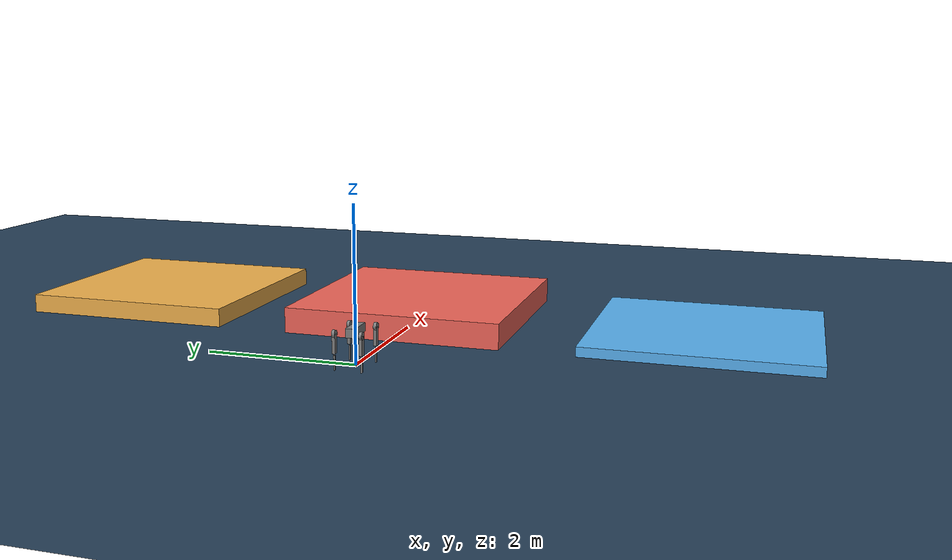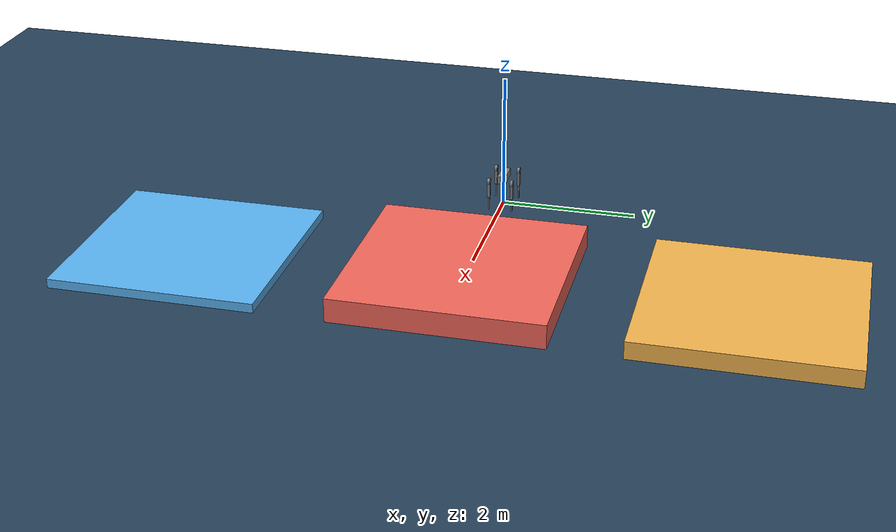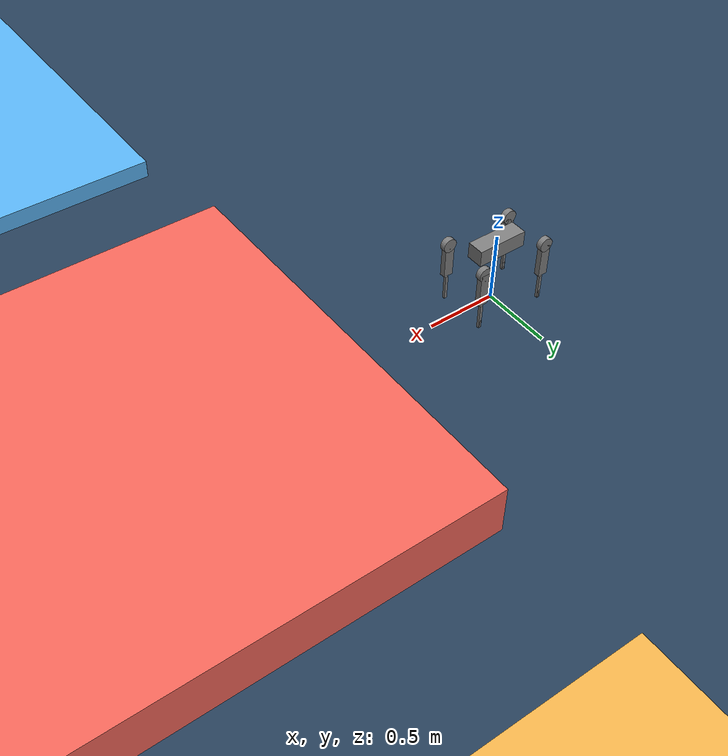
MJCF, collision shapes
<mujoco model="arcdog scene">
  <include file="arcdog_adjustable_leg.xml"/>

  <statistic center="0 0 0.1" extent="0.8"/>

  <visual>
    <headlight diffuse="0.6 0.6 0.6" ambient="0.3 0.3 0.3" specular="0 0 0"/>
    <rgba haze="0.15 0.25 0.35 1"/>
    <global azimuth="-130" elevation="-20"/>
  </visual>

  <asset>
    <texture type="skybox" builtin="gradient" rgb1="0.3 0.5 0.7" rgb2="0 0 0" width="512" height="3072"/>
    <texture type="2d" name="groundplane" builtin="checker" mark="edge" rgb1="0.2 0.3 0.4" rgb2="0.1 0.2 0.3"
      markrgb="0.8 0.8 0.8" width="300" height="300"/>
    <material name="groundplane" texture="groundplane" texuniform="true" texrepeat="5 5" reflectance="0.2"/>
  </asset>

  <worldbody>
    <light pos="0 0 1.5" dir="0 0 -1" directional="true"/>
    <geom name="floor" size="0 0 0.05" type="plane" material="groundplane"/>

    <geom name="highstep_box_L3_h0133"  pos="2.70 -4.00 0.0665" type="box" size="1.50 1.50 0.0665" rgba="0.35 0.70 0.95 1" friction="2.0"/>
    <geom name="highstep_box_L7_h0257"  pos="2.70  4.00 0.1285" type="box" size="1.50 1.50 0.1285" rgba="0.95 0.70 0.30 1" friction="2.0"/>
    <geom name="highstep_box_L10_h0350" pos="2.70  0.00 0.1750" type="box" size="1.50 1.50 0.1750" rgba="0.95 0.40 0.35 1" friction="2.0"/>

  </worldbody>
</mujoco>

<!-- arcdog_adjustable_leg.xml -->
<mujoco model="arcdog_adjustable_leg">
  <compiler angle="radian" meshdir="../meshes" autolimits="true" />

  <option cone="elliptic" impratio="100" />

  <default>
    <default class="arcdog_adjustable_leg">
      <geom friction="0.4" margin="0.001" condim="1"/>
      <joint axis="0 1 0" damping="0.1" armature="0.01" frictionloss="0.2"/>
      <motor ctrlrange="-23.7 23.7"/>
      <default class="abduction">
        <joint axis="1 0 0" range="-1.0472 1.0472"/> //TODO JUST COPY FROM GO2
      </default>
      <default class="hip">
        <default class="front_hip">
          <joint range="-1.5708 3.4907"/> //TODO JUST COPY FROM GO2
        </default>
        <default class="back_hip">
          <joint range="-0.5236 4.5379"/> //TODO JUST COPY FROM GO2
        </default>
      </default>
      <default class="knee">
        <joint range="-2.7227 -0.83776"/> //TODO JUST COPY FROM GO2
        <motor ctrlrange="-45.43 45.43"/>
      </default>
      <default class="prismatic">
        <joint type="slide" axis="0 0 1" range="-0.05 0.10" damping="10.0" armature="0.1"/>
        <motor ctrlrange="-200 200"/>
      </default>
      <default class="visual">
        <geom type="mesh" contype="0" conaffinity="0" group="2"/>
      </default>
      <default class="collision">
        <geom group="3"/>
        <default class="foot">
          <!-- 修改点：将摩擦系数从 0.4 提升至 2.0，彻底解决打滑问题 -->
          <geom size="0.0235" pos="-0.001 0 -0.1651" priority="1" condim="6"
            friction="1.0 0.04 0.01"/>
        </default>
      </default>
    </default>
  </default>

  <asset>
    <material name="metal" rgba=".9 .95 .95 1" />
    <material name="black" rgba="0 0 0 1" />
    <material name="white" rgba="1 1 1 1" />
    <material name="gray" rgba="0.671705 0.692426 0.774270 1" />

    <mesh file="trunk.stl" scale="1 1 1"/>
    <mesh file="hip.stl"/>
    <mesh file="thigh.stl"/>
    <mesh file="thigh_mirror.stl"/>
    <mesh file="calf.stl"/>
    <mesh file="calf_mirror.stl"/>
    <mesh file="adjustable_leg.stl"/>
    <mesh file="foot.obj" />
  </asset>

  <worldbody>
    <body name="base_link" pos="0 0 0.445" childclass="arcdog_adjustable_leg">
      <inertial pos="-0.002250 0.000116 -0.001452" quat="1 0 0 0"
        mass="5.742"
        diaginertia="0.037914363 0.119267297 0.142804844" />
      <freejoint />
      <geom mesh="trunk" material="gray" class="visual" />
      <geom size="0.1805 0.0605 0.057" type="box" class="collision"/> //size of xml box model is half of urdf model
      <site name="imu" pos="-0.02557 0 0.04232" /> //TODO JUST COPY FROM GO2

      <body name="FL_hip" pos="0.2515 0.0605 0">
        <inertial pos="-0.0082 0.000984 0.000162" quat="0.494941 0.495107 0.504986 0.504868" mass="1.108" diaginertia="0.000972670 0.001754403 0.001311138" />
        <joint name="FL_hip_joint" class="abduction" />
        <geom mesh="hip" material="metal" class="visual" />
        <geom size="0.0495 0.02" pos="0 0.11475 0" quat="0.707107 0.707107 0 0" type="cylinder" class="collision" />
        <body name="FL_thigh" pos="0 0.11475 0">
          <inertial pos="-0.004484 -0.033084 -0.030728" quat="1 0 0 0" mass="1.636" diaginertia="0.009596889 0.009201469 0.002385568" />
          <joint name="FL_thigh_joint" class="front_hip" />
          <geom mesh="thigh" material="metal" class="visual" />
          <geom size="0.12225 0.020 0.033985" pos="0 0 -0.12225" quat="0.707107 0 0.707107 0" type="box" class="collision" />
          <body name="FL_calf" pos="0 0 -0.2445">
            <inertial pos="-0.000681132 0 -0.141397" quat="0.707094 -0.00418023 -0.00418023 0.707094" mass="0.700" diaginertia="9.30304e-4 9.25714e-4 3.62187e-5" />
            <joint name="FL_calf_joint" class="knee" />
            <geom mesh="calf_mirror" material="gray" class="visual" />
            <geom size="0.0965 0.01 0.01" pos="0 0 -0.11852" quat="0.707107 0 0.707107 0" type="box" class="collision" />
            <body name="FL_box" pos="0 0 -0.133">
              <inertial pos="-0 0 -0.105" quat="1 0 0 0" mass="0.200" diaginertia="2.84096807e-4 2.62510200e-4 5.16070090e-5" />
              <joint name="FL_box_joint" class="prismatic" />
              <geom mesh="adjustable_leg" material="gray" class="visual" />
              <geom size="0.0075 0.01 0.08455" pos="0 0 -0.0965" quat="0 0 0 1" type="box" class="collision" />
              <geom pos="0 0 -0.1651" mesh="foot" class="visual" material="black" />
              <geom name="FL_foot" class="foot" />
              <body name="FL_foot"/>
            </body>
          </body>
        </body>
      </body>

       <body name="FR_hip" pos="0.2515 -0.0605 0">
        <inertial pos="-0.0082 0.000984 0.000162" quat="0.494941 0.495107 0.504986 0.504868" mass="1.108" diaginertia="0.000972670 0.001754403 0.001311138" />
        <joint name="FR_hip_joint" class="abduction" />
        <geom mesh="hip" material="metal" class="visual" quat="4.63268e-05 1 0 0" />
        <geom size="0.0495 0.02" pos="0 -0.11475 0" quat="0.707107 0.707107 0 0" type="cylinder" class="collision" />
        <body name="FR_thigh" pos="0 -0.11475 0">
          <inertial pos="-0.004484 0.033084 -0.030728" quat="1 0 0 0" mass="1.636" diaginertia="0.009596889 0.009201469 0.002385568" />
          <joint name="FR_thigh_joint" class="front_hip" />
          <geom mesh="thigh_mirror" material="metal" class="visual" />
          <geom size="0.12225 0.020 0.033985" pos="0 0 -0.12225" quat="0.707107 0 0.707107 0" type="box" class="collision" />
          <body name="FR_calf" pos="0 0 -0.2445">
            <inertial pos="-0.000681132 0 -0.141397" quat="0.707094 -0.00418023 -0.00418023 0.707094" mass="0.700" diaginertia="9.30304e-4 9.25714e-4 3.62187e-5" />
            <joint name="FR_calf_joint" class="knee" />
            <geom mesh="calf" material="gray" class="visual" />
            <geom size="0.0965 0.01 0.01" pos="0 0 -0.11852" quat="0.707107 0 0.707107 0" type="box" class="collision" />
            <body name="FR_box" pos="0 0 -0.133">
              <inertial pos="-0 0 -0.105" quat="1 0 0 0" mass="0.200" diaginertia="2.84096807e-4 2.62510200e-4 5.16070090e-5" />
              <joint name="FR_box_joint" class="prismatic" />
              <geom mesh="adjustable_leg" material="gray" class="visual" />
              <geom size="0.0075 0.01 0.08455" pos="0 0 -0.0965" quat="0 0 0 1" type="box" class="collision" />
              <geom pos="0 0 -0.1651" mesh="foot" class="visual" material="black" />
              <geom name="FR_foot" class="foot" />
              <body name="FR_foot"/>
            </body>
          </body>
        </body>
      </body>

      <body name="RL_hip" pos="-0.2515 0.0605 0">
        <inertial pos="-0.0082 0.000984 0.000162" quat="0.494941 0.495107 0.504986 0.504868" mass="1.108" diaginertia="0.000972670 0.001754403 0.001311138" />
        <joint name="RL_hip_joint" class="abduction" />
        <geom mesh="hip" material="metal" class="visual" quat="4.63268e-05 0 1 0" />
        <geom size="0.0495 0.02" pos="0 0.11475 0" quat="0.707107 0.707107 0 0" type="cylinder" class="collision" />
        <body name="RL_thigh" pos="0 0.11475 0">
          <inertial pos="-0.004484 -0.033084 -0.030728" quat="1 0 0 0" mass="1.636" diaginertia="0.009596889 0.009201469 0.002385568" />
          <joint name="RL_thigh_joint" class="back_hip" />
          <geom mesh="thigh" material="metal" class="visual" />
          <geom size="0.12225 0.020 0.033985" pos="0 0 -0.12225" quat="0.707107 0 0.707107 0" type="box" class="collision" />
          <body name="RL_calf" pos="0 0 -0.2445">
            <inertial pos="-0.000681132 0 -0.141397" quat="0.707094 -0.00418023 -0.00418023 0.707094" mass="0.700" diaginertia="9.30304e-4 9.25714e-4 3.62187e-5" />
            <joint name="RL_calf_joint" class="knee" />
            <geom mesh="calf_mirror" material="gray" class="visual" />
            <geom size="0.0965 0.01 0.01" pos="0 0 -0.11852" quat="0.707107 0 0.707107 0" type="box" class="collision" />
            <body name="RL_box" pos="0 0 -0.133">
              <inertial pos="-0 0 -0.105" quat="1 0 0 0" mass="0.200" diaginertia="2.84096807e-4 2.62510200e-4 5.16070090e-5" />
             <joint name="RL_box_joint" class="prismatic" />
              <geom mesh="adjustable_leg" material="gray" class="visual" />
              <geom size="0.0075 0.01 0.08455" pos="0 0 -0.0965" quat="0 0 0 1" type="box" class="collision" />
              <geom pos="0 0 -0.1651" mesh="foot" class="visual" material="black" />
              <geom name="RL_foot" class="foot" />
              <body name="RL_foot" />
            </body>
          </body>
        </body>
      </body>

      <body name="RR_hip" pos="-0.2515 -0.0605 0">
        <inertial pos="-0.0082 0.000984 0.000162" quat="0.494941 0.495107 0.504986 0.504868" mass="1.108" diaginertia="0.000972670 0.001754403 0.001311138" />
        <joint name="RR_hip_joint" class="abduction" />
        <geom mesh="hip" material="metal" class="visual"
          quat="2.14617e-09 4.63268e-05 4.63268e-05 -1" />
        <geom size="0.0495 0.02" pos="0 -0.11475 0" quat="0.707107 0.707107 0 0" type="cylinder" class="collision" />
        <body name="RR_thigh" pos="0 -0.11475 0">
          <inertial pos="-0.004484 0.033084 -0.030728" quat="1 0 0 0" mass="1.636" diaginertia="0.009596889 0.009201469 0.002385568" />
          <joint name="RR_thigh_joint" class="back_hip" />
          <geom mesh="thigh_mirror" material="metal" class="visual" />
          <geom size="0.12225 0.020 0.033985" pos="0 0 -0.12225" quat="0.707107 0 0.707107 0" type="box" class="collision" />
          <body name="RR_calf" pos="0 0 -0.2445">
           <inertial pos="-0.000681132 0 -0.141397" quat="0.707094 -0.00418023 -0.00418023 0.707094" mass="0.700" diaginertia="9.30304e-4 9.25714e-4 3.62187e-5" />
            <joint name="RR_calf_joint" class="knee" />
            <geom mesh="calf" material="gray" class="visual" />
            <geom size="0.0965 0.01 0.01" pos="0 0 -0.11852" quat="0.707107 0 0.707107 0" type="box" class="collision" />
            <body name="RR_box" pos="0 0 -0.133">
              <inertial pos="-0 0 -0.105" quat="1 0 0 0" mass="0.200" diaginertia="2.84096807e-4 2.62510200e-4 5.16070090e-5" />
              <joint name="RR_box_joint" class="prismatic" />
              <geom mesh="adjustable_leg" material="gray" class="visual" />
              <geom size="0.0075 0.01 0.08455" pos="0 0 -0.0965" quat="0 0 0 1" type="box" class="collision" />
              <geom pos="0 0 -0.1651" mesh="foot" class="visual" material="black" />
              <geom name="RR_foot" class="foot" />
              <body name="RR_foot"/>
            </body>
          </body>
        </body>
      </body>
    </body>
  </worldbody>

  <actuator>
    <motor class="abduction" name="FR_hip_joint" joint="FR_hip_joint" />
    <motor class="hip" name="FR_thigh_joint" joint="FR_thigh_joint" />
    <motor class="knee" name="FR_calf_joint" joint="FR_calf_joint" />
    <motor class="prismatic" name="FR_box_joint" joint="FR_box_joint" />
    <motor class="abduction" name="FL_hip_joint" joint="FL_hip_joint" />
    <motor class="hip" name="FL_thigh_joint" joint="FL_thigh_joint" />
    <motor class="knee" name="FL_calf_joint" joint="FL_calf_joint" />
    <motor class="prismatic" name="FL_box_joint" joint="FL_box_joint" />
    <motor class="abduction" name="RR_hip_joint" joint="RR_hip_joint" />
    <motor class="hip" name="RR_thigh_joint" joint="RR_thigh_joint" />
    <motor class="knee" name="RR_calf_joint" joint="RR_calf_joint" />
    <motor class="prismatic" name="RR_box_joint" joint="RR_box_joint" />
    <motor class="abduction" name="RL_hip_joint" joint="RL_hip_joint" />
    <motor class="hip" name="RL_thigh_joint" joint="RL_thigh_joint" />
    <motor class="knee" name="RL_calf_joint" joint="RL_calf_joint" />
    <motor class="prismatic" name="RL_box_joint" joint="RL_box_joint" />
  </actuator>

  <sensor>
    <jointpos name="FR_hip_pos" joint="FR_hip_joint" />
    <jointpos name="FR_thigh_pos" joint="FR_thigh_joint" />
    <jointpos name="FR_calf_pos" joint="FR_calf_joint" />
    <jointpos name="FR_box_pos" joint="FR_box_joint" />
    <jointpos name="FL_hip_pos" joint="FL_hip_joint" />
    <jointpos name="FL_thigh_pos" joint="FL_thigh_joint" />
    <jointpos name="FL_calf_pos" joint="FL_calf_joint" />
    <jointpos name="FL_box_pos" joint="FL_box_joint" />
    <jointpos name="RR_hip_pos" joint="RR_hip_joint" />
    <jointpos name="RR_thigh_pos" joint="RR_thigh_joint" />
    <jointpos name="RR_calf_pos" joint="RR_calf_joint" />
    <jointpos name="RR_box_pos" joint="RR_box_joint" />
    <jointpos name="RL_hip_pos" joint="RL_hip_joint" />
    <jointpos name="RL_thigh_pos" joint="RL_thigh_joint" />
    <jointpos name="RL_calf_pos" joint="RL_calf_joint" />
    <jointpos name="RL_box_pos" joint="RL_box_joint" />

    <jointvel name="FR_hip_vel" joint="FR_hip_joint" />
    <jointvel name="FR_thigh_vel" joint="FR_thigh_joint" />
    <jointvel name="FR_calf_vel" joint="FR_calf_joint" />
    <jointvel name="FR_box_vel" joint="FR_box_joint" />
    <jointvel name="FL_hip_vel" joint="FL_hip_joint" />
    <jointvel name="FL_thigh_vel" joint="FL_thigh_joint" />
    <jointvel name="FL_calf_vel" joint="FL_calf_joint" />
    <jointvel name="FL_box_vel" joint="FL_box_joint" />
    <jointvel name="RR_hip_vel" joint="RR_hip_joint" />
    <jointvel name="RR_thigh_vel" joint="RR_thigh_joint" />
    <jointvel name="RR_calf_vel" joint="RR_calf_joint" />
    <jointvel name="RR_box_vel" joint="RR_box_joint" />
    <jointvel name="RL_hip_vel" joint="RL_hip_joint" />
    <jointvel name="RL_thigh_vel" joint="RL_thigh_joint" />
    <jointvel name="RL_calf_vel" joint="RL_calf_joint" />
    <jointvel name="RL_box_vel" joint="RL_box_joint" />

    <jointactuatorfrc name="FR_hip_torque" joint="FR_hip_joint" noise="0.01" />
    <jointactuatorfrc name="FR_thigh_torque" joint="FR_thigh_joint" noise="0.01" />
    <jointactuatorfrc name="FR_calf_torque" joint="FR_calf_joint" noise="0.01" />
    <jointactuatorfrc name="FR_box_torque" joint="FR_box_joint" noise="0.01" />
    <jointactuatorfrc name="FL_hip_torque" joint="FL_hip_joint" noise="0.01" />
    <jointactuatorfrc name="FL_thigh_torque" joint="FL_thigh_joint" noise="0.01" />
    <jointactuatorfrc name="FL_calf_torque" joint="FL_calf_joint" noise="0.01" />
    <jointactuatorfrc name="FL_box_torque" joint="FL_box_joint" noise="0.01" />
    <jointactuatorfrc name="RR_hip_torque" joint="RR_hip_joint" noise="0.01" />
    <jointactuatorfrc name="RR_thigh_torque" joint="RR_thigh_joint" noise="0.01" />
    <jointactuatorfrc name="RR_calf_torque" joint="RR_calf_joint" noise="0.01" />
    <jointactuatorfrc name="RR_box_torque" joint="RR_box_joint" noise="0.01" />
    <jointactuatorfrc name="RL_hip_torque" joint="RL_hip_joint" noise="0.01" />
    <jointactuatorfrc name="RL_thigh_torque" joint="RL_thigh_joint" noise="0.01" />
    <jointactuatorfrc name="RL_calf_torque" joint="RL_calf_joint" noise="0.01" />
    <jointactuatorfrc name="RL_box_torque" joint="RL_box_joint" noise="0.01" />

    <framequat name="imu_quat" objtype="site" objname="imu" />
    <gyro name="imu_gyro" site="imu" />
    <accelerometer name="imu_acc" site="imu" />

    <framepos name="frame_pos" objtype="site" objname="imu" />
    <framelinvel name="frame_vel" objtype="site" objname="imu" />
  </sensor>

  <keyframe>
    <key name="home" qpos="0 0 0.35 1 0 0 0 0 0.9 -1.8 2 0 0.9 -1.8 2 0 0.9 -1.8 2 0 0.9 -1.8 2"
      ctrl="0 0.9 -1.8 2 0 0.9 -1.8 2 0 0.9 -1.8 2 0 0.9 -1.8 2" />
    <key name="highstep_b300_contract_start"
      qpos="0.65 0 0.44 1 0 0 0 0.1975599229 0.6464785337 -1.3426415920 0.0229980294 0.2744115889 0.7154185176 -1.3581618071 0.0353659987 0.3135349751 0.7971844673 -1.2585310936 0.0325565822 -0.2091307789 0.5376236439 -1.1646499634 0.0266456921"
      qvel="0 0 0 0 0 0 -0.0712107196 1.8758925200 -2.8663997650 -0.2698323429 -0.0423095301 -0.1792650074 -0.1255981028 -0.0015531695 -0.0369157605 -0.1548131555 -0.2258787751 -0.0138619617 -0.0381572768 -0.5836446881 0.7860876322 -0.0531845316" />
  </keyframe>
</mujoco>
